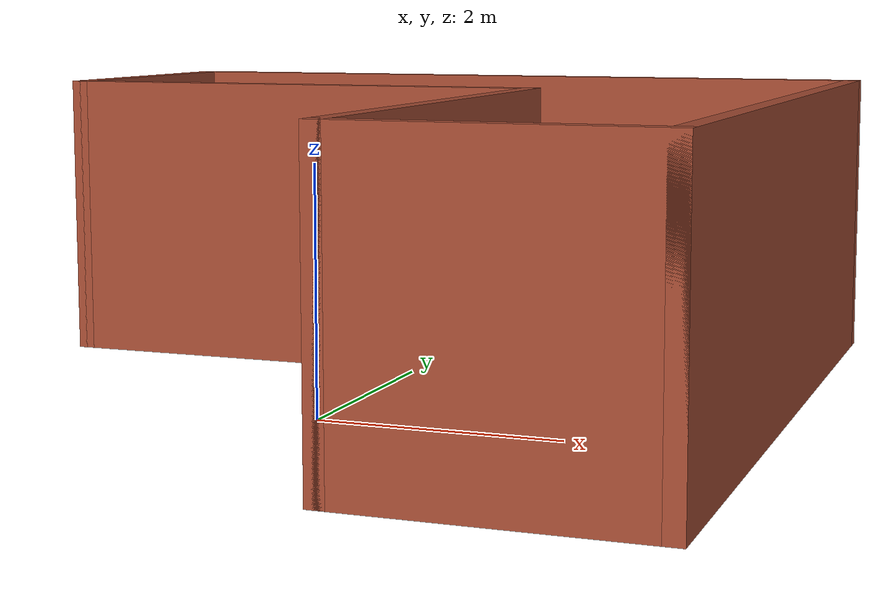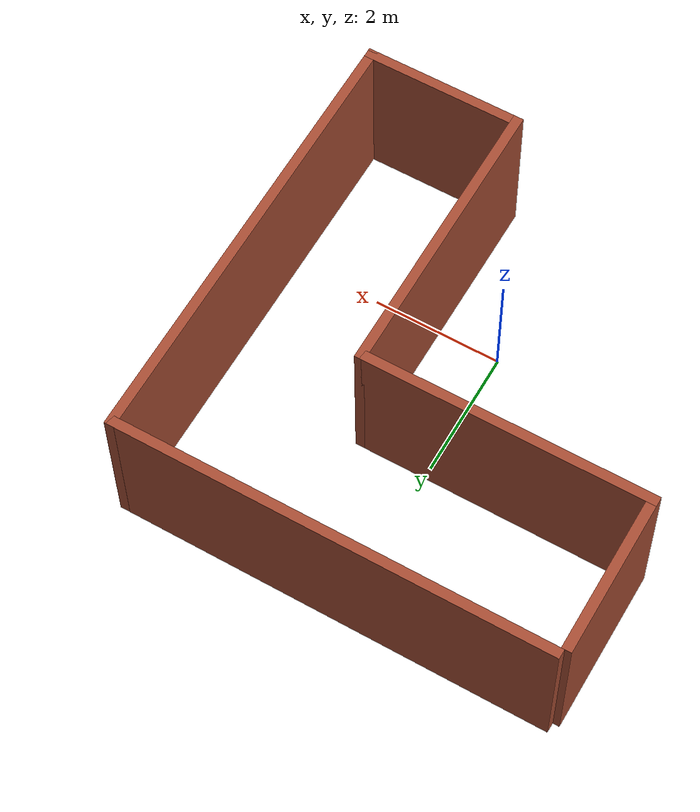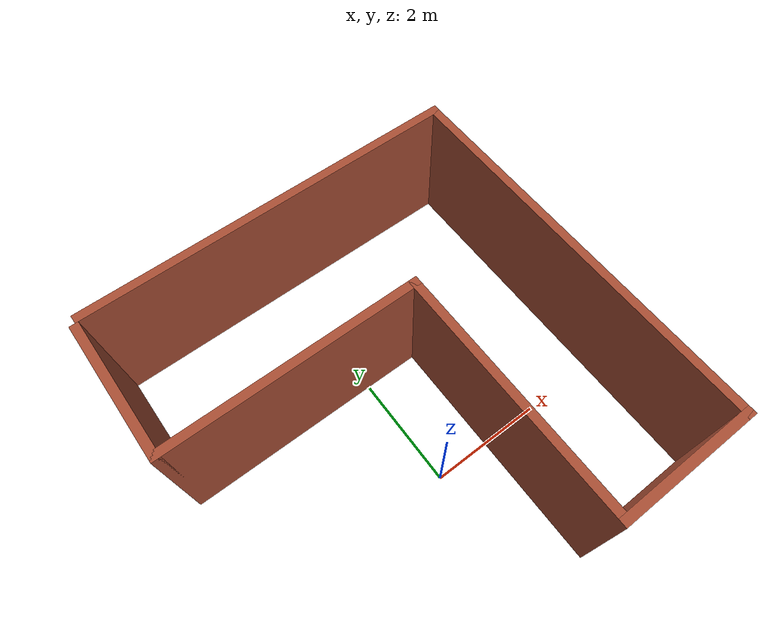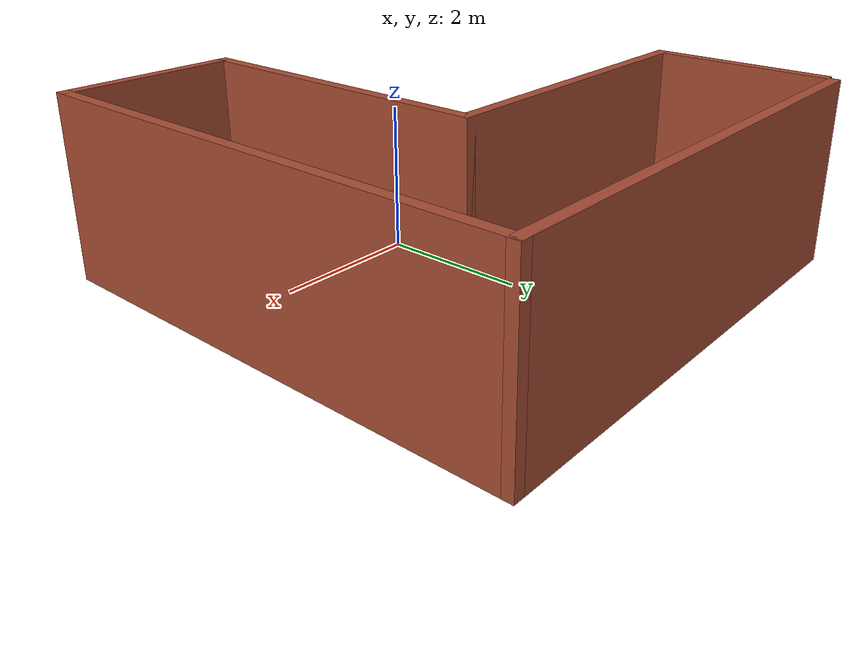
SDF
<?xml version='1.0'?>
<sdf version='1.6'>
  <model name='lmaze'>
    <pose frame=''>0.038442 1.17576 0 0 -0 0</pose>
    <link name='Wall_13'>
      <collision name='Wall_13_Collision'>
        <geometry>
          <box>
            <size>2.5 0.15 2.5</size>
          </box>
        </geometry>
        <pose frame=''>0 0 1.25 0 -0 0</pose>
      </collision>
      <visual name='Wall_13_Visual'>
        <pose frame=''>0 0 1.25 0 -0 0</pose>
        <geometry>
          <box>
            <size>2.5 0.15 2.5</size>
          </box>
        </geometry>
        <material>
          <script>
            <uri>file://media/materials/scripts/gazebo.material</uri>
            <name>Gazebo/Bricks</name>
          </script>
          <ambient>1 1 1 1</ambient>
        </material>
      </visual>
      <pose frame=''>-3.35 2.1 0 0 0 -1.5708</pose>
    </link>
    <link name='Wall_14'>
      <collision name='Wall_14_Collision'>
        <geometry>
          <box>
            <size>4.5 0.15 2.5</size>
          </box>
        </geometry>
        <pose frame=''>0 0 1.25 0 -0 0</pose>
      </collision>
      <visual name='Wall_14_Visual'>
        <pose frame=''>0 0 1.25 0 -0 0</pose>
        <geometry>
          <box>
            <size>4.5 0.15 2.5</size>
          </box>
        </geometry>
        <material>
          <script>
            <uri>file://media/materials/scripts/gazebo.material</uri>
            <name>Gazebo/Bricks</name>
          </script>
          <ambient>1 1 1 1</ambient>
        </material>
      </visual>
      <pose frame=''>-1.175 0.925 0 0 -0 0</pose>
    </link>
    <link name='Wall_15'>
      <collision name='Wall_15_Collision'>
        <geometry>
          <box>
            <size>4.5 0.15 2.5</size>
          </box>
        </geometry>
        <pose frame=''>0 0 1.25 0 -0 0</pose>
      </collision>
      <visual name='Wall_15_Visual'>
        <pose frame=''>0 0 1.25 0 -0 0</pose>
        <geometry>
          <box>
            <size>4.5 0.15 2.5</size>
          </box>
        </geometry>
        <material>
          <script>
            <uri>file://media/materials/scripts/gazebo.material</uri>
            <name>Gazebo/Bricks</name>
          </script>
          <ambient>1 1 1 1</ambient>
        </material>
      </visual>
      <pose frame=''>1 -1.25 0 0 0 -1.5708</pose>
    </link>
    <link name='Wall_16'>
      <collision name='Wall_16_Collision'>
        <geometry>
          <box>
            <size>2.5 0.15 2.5</size>
          </box>
        </geometry>
        <pose frame=''>0 0 1.25 0 -0 0</pose>
      </collision>
      <visual name='Wall_16_Visual'>
        <pose frame=''>0 0 1.25 0 -0 0</pose>
        <geometry>
          <box>
            <size>2.5 0.15 2.5</size>
          </box>
        </geometry>
        <material>
          <script>
            <uri>file://media/materials/scripts/gazebo.material</uri>
            <name>Gazebo/Bricks</name>
          </script>
          <ambient>1 1 1 1</ambient>
        </material>
      </visual>
      <pose frame=''>2.175 -3.425 0 0 -0 0</pose>
    </link>
    <link name='Wall_17'>
      <collision name='Wall_17_Collision'>
        <geometry>
          <box>
            <size>7 0.15 2.5</size>
          </box>
        </geometry>
        <pose frame=''>0 0 1.25 0 -0 0</pose>
      </collision>
      <visual name='Wall_17_Visual'>
        <pose frame=''>0 0 1.25 0 -0 0</pose>
        <geometry>
          <box>
            <size>7 0.15 2.5</size>
          </box>
        </geometry>
        <material>
          <script>
            <uri>file://media/materials/scripts/gazebo.material</uri>
            <name>Gazebo/Bricks</name>
          </script>
          <ambient>1 1 1 1</ambient>
        </material>
      </visual>
      <pose frame=''>3.35 0 0 0 -0 1.5708</pose>
    </link>
    <link name='Wall_18'>
      <collision name='Wall_18_Collision'>
        <geometry>
          <box>
            <size>6.75 0.15 2.5</size>
          </box>
        </geometry>
        <pose frame=''>0 0 1.25 0 -0 0</pose>
      </collision>
      <visual name='Wall_18_Visual'>
        <pose frame=''>0 0 1.25 0 -0 0</pose>
        <geometry>
          <box>
            <size>6.75 0.15 2.5</size>
          </box>
        </geometry>
        <material>
          <script>
            <uri>file://media/materials/scripts/gazebo.material</uri>
            <name>Gazebo/Bricks</name>
          </script>
          <ambient>1 1 1 1</ambient>
        </material>
      </visual>
      <pose frame=''>0.05 3.425 0 0 -0 3.14159</pose>
    </link>
    <static>1</static>
  </model>
</sdf>
